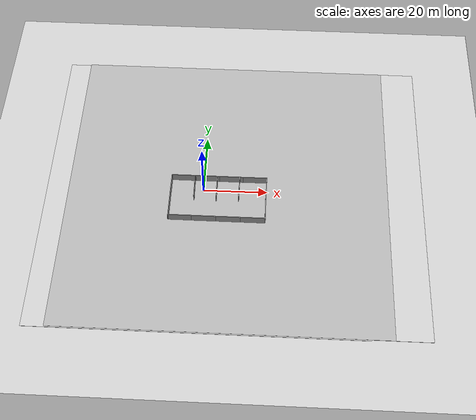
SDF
<sdf version="1.10">
 <world name="empty">
  <physics name="1ms" type="ode">
   <max_step_size>0.002</max_step_size>
   <real_time_factor>1</real_time_factor>
   <real_time_update_rate>500</real_time_update_rate>
  </physics>
  <plugin name="gz::sim::systems::Physics" filename="gz-sim-physics-system"/>
  <plugin name="gz::sim::systems::UserCommands" filename="gz-sim-user-commands-system"/>
  <plugin name="gz::sim::systems::SceneBroadcaster" filename="gz-sim-scene-broadcaster-system"/>
  <plugin name="gz::sim::systems::Contact" filename="gz-sim-contact-system"/>
  <gravity>0 0 -9.8000000000000007</gravity>
  <magnetic_field>5.5644999999999998e-06 2.2875799999999999e-05 -4.2388400000000002e-05</magnetic_field>
  <atmosphere type="adiabatic"/>
  <scene><ambient>0.9 0.9 0.9 1</ambient><background>0.9 0.9 0.9 1</background><shadows>false</shadows></scene>
  <model name="ground_plane">
   <static>true</static>
   <link name="link">
    <collision name="collision">
     <geometry><plane><normal>0 0 1</normal><size>100 100</size></plane></geometry>
     <surface><friction><ode><mu>1</mu><mu2>1</mu2></ode></friction></surface>
    </collision>
    <visual name="visual">
     <geometry><plane><normal>0 0 1</normal><size>100 100</size></plane></geometry>
     <material>
      <ambient>0.800000012 0.800000012 0.800000012 1</ambient>
      <diffuse>0.800000012 0.800000012 0.800000012 1</diffuse>
      <specular>0.800000012 0.800000012 0.800000012 1</specular>
     </material>
    </visual>
    <inertial>
     <mass>1</mass>
     <inertia><ixx>1</ixx><ixy>0</ixy><ixz>0</ixz><iyy>1</iyy><iyz>0</iyz><izz>1</izz></inertia>
    </inertial>
   </link>
  </model>
  <model name="grey_wall">
   <static>true</static>
   <link name="link">
    <pose>0 0 1.3999999999999999 0 0 0</pose>
    <collision name="collision">
     <geometry><box><size>7.5 0.20000000000000001 2.7999999999999998</size></box></geometry>
    </collision>
    <visual name="visual">
     <cast_shadows>false</cast_shadows>
     <geometry><box><size>7.5 0.20000000000000001 2.7999999999999998</size></box></geometry>
     <material>
      <script>
       <uri>https://fuel.gazebosim.org/1.0/openrobotics/models/grey wall/3/files/materials/scripts</uri>
       <uri>https://fuel.gazebosim.org/1.0/openrobotics/models/grey wall/3/files/materials/textures</uri>
       <name>vrc/grey_wall</name>
      </script>
     </material>
    </visual>
    <inertial>
     <mass>1</mass>
     <inertia><ixx>1</ixx><ixy>0</ixy><ixz>0</ixz><iyy>1</iyy><iyz>0</iyz><izz>1</izz></inertia>
    </inertial>
   </link>
   <pose>1.0310618909401805 3.6370633488647082 0 0 0 0</pose>
  </model>
  <model name="grey_wall_0">
   <static>true</static>
   <link name="link">
    <pose>0 0 1.3999999999999999 0 0 0</pose>
    <collision name="collision">
     <geometry><box><size>7.5 0.20000000000000001 2.7999999999999998</size></box></geometry>
    </collision>
    <visual name="visual">
     <cast_shadows>false</cast_shadows>
     <geometry><box><size>7.5 0.20000000000000001 2.7999999999999998</size></box></geometry>
     <material>
      <script>
       <uri>https://fuel.gazebosim.org/1.0/openrobotics/models/grey wall/3/files/materials/scripts</uri>
       <uri>https://fuel.gazebosim.org/1.0/openrobotics/models/grey wall/3/files/materials/textures</uri>
       <name>vrc/grey_wall</name>
      </script>
     </material>
    </visual>
    <inertial>
     <mass>1</mass>
     <inertia><ixx>1</ixx><ixy>0</ixy><ixz>0</ixz><iyy>1</iyy><iyz>0</iyz><izz>1</izz></inertia>
    </inertial>
   </link>
   <pose>-2.8962769508361816 -0.19152174890041351 2.2204460492503131e-16 0 0 1.5843799391314595</pose>
  </model>
  <model name="grey_wall_1">
   <static>true</static>
   <link name="link">
    <pose>0 0 1.3999999999999999 0 0 0</pose>
    <collision name="collision">
     <geometry><box><size>7.5 0.20000000000000001 2.7999999999999998</size></box></geometry>
    </collision>
    <visual name="visual">
     <cast_shadows>false</cast_shadows>
     <geometry><box><size>7.5 0.20000000000000001 2.7999999999999998</size></box></geometry>
     <material>
      <script>
       <uri>https://fuel.gazebosim.org/1.0/openrobotics/models/grey wall/3/files/materials/scripts</uri>
       <uri>https://fuel.gazebosim.org/1.0/openrobotics/models/grey wall/3/files/materials/textures</uri>
       <name>vrc/grey_wall</name>
      </script>
     </material>
    </visual>
    <inertial>
     <mass>1</mass>
     <inertia><ixx>1</ixx><ixy>0</ixy><ixz>0</ixz><iyy>1</iyy><iyz>0</iyz><izz>1</izz></inertia>
    </inertial>
   </link>
   <pose>8.4489297866821289 3.6287746429443359 0 0 0 0</pose>
  </model>
  <model name="grey_wall_2">
   <static>true</static>
   <link name="link">
    <pose>0 0 1.3999999999999999 0 0 0</pose>
    <collision name="collision">
     <geometry><box><size>7.5 0.20000000000000001 2.7999999999999998</size></box></geometry>
    </collision>
    <visual name="visual">
     <cast_shadows>false</cast_shadows>
     <geometry><box><size>7.5 0.20000000000000001 2.7999999999999998</size></box></geometry>
     <material>
      <script>
       <uri>https://fuel.gazebosim.org/1.0/openrobotics/models/grey wall/3/files/materials/scripts</uri>
       <uri>https://fuel.gazebosim.org/1.0/openrobotics/models/grey wall/3/files/materials/textures</uri>
       <name>vrc/grey_wall</name>
      </script>
     </material>
    </visual>
    <inertial>
     <mass>1</mass>
     <inertia><ixx>1</ixx><ixy>0</ixy><ixz>0</ixz><iyy>1</iyy><iyz>0</iyz><izz>1</izz></inertia>
    </inertial>
   </link>
   <pose>4.0670313835144043 -0.15989607572555542 -4.4408920985006262e-16 0 0 -1.5689400107179925</pose>
  </model>
  <model name="grey_wall_3">
   <static>true</static>
   <link name="link">
    <pose>0 0 1.3999999999999999 0 0 0</pose>
    <collision name="collision">
     <geometry><box><size>7.5 0.20000000000000001 2.7999999999999998</size></box></geometry>
    </collision>
    <visual name="visual">
     <cast_shadows>false</cast_shadows>
     <geometry><box><size>7.5 0.20000000000000001 2.7999999999999998</size></box></geometry>
     <material>
      <script>
       <uri>https://fuel.gazebosim.org/1.0/openrobotics/models/grey wall/3/files/materials/scripts</uri>
       <uri>https://fuel.gazebosim.org/1.0/openrobotics/models/grey wall/3/files/materials/textures</uri>
       <name>vrc/grey_wall</name>
      </script>
     </material>
    </visual>
    <inertial>
     <mass>1</mass>
     <inertia><ixx>1</ixx><ixy>0</ixy><ixz>0</ixz><iyy>1</iyy><iyz>0</iyz><izz>1</izz></inertia>
    </inertial>
   </link>
   <pose>-6.3907899856567383 3.646193265914917 0 0 0 0</pose>
  </model>
  <model name="grey_wall_4">
   <static>true</static>
   <link name="link">
    <pose>0 0 1.3999999999999999 0 0 0</pose>
    <collision name="collision">
     <geometry><box><size>7.5 0.20000000000000001 2.7999999999999998</size></box></geometry>
    </collision>
    <visual name="visual">
     <cast_shadows>false</cast_shadows>
     <geometry><box><size>7.5 0.20000000000000001 2.7999999999999998</size></box></geometry>
     <material>
      <script>
       <uri>https://fuel.gazebosim.org/1.0/openrobotics/models/grey wall/3/files/materials/scripts</uri>
       <uri>https://fuel.gazebosim.org/1.0/openrobotics/models/grey wall/3/files/materials/textures</uri>
       <name>vrc/grey_wall</name>
      </script>
     </material>
    </visual>
    <inertial>
     <mass>1</mass>
     <inertia><ixx>1</ixx><ixy>0</ixy><ixz>0</ixz><iyy>1</iyy><iyz>0</iyz><izz>1</izz></inertia>
    </inertial>
   </link>
   <pose>15.932758331298828 3.6409499645233154 0 0 0 0</pose>
  </model>
  <model name="grey_wall_5">
   <static>true</static>
   <link name="link">
    <pose>0 0 1.3999999999999999 0 0 0</pose>
    <collision name="collision">
     <geometry><box><size>7.5 0.20000000000000001 2.7999999999999998</size></box></geometry>
    </collision>
    <visual name="visual">
     <cast_shadows>false</cast_shadows>
     <geometry><box><size>7.5 0.20000000000000001 2.7999999999999998</size></box></geometry>
     <material>
      <script>
       <uri>https://fuel.gazebosim.org/1.0/openrobotics/models/grey wall/3/files/materials/scripts</uri>
       <uri>https://fuel.gazebosim.org/1.0/openrobotics/models/grey wall/3/files/materials/textures</uri>
       <name>vrc/grey_wall</name>
      </script>
     </material>
    </visual>
    <inertial>
     <mass>1</mass>
     <inertia><ixx>1</ixx><ixy>0</ixy><ixz>0</ixz><iyy>1</iyy><iyz>0</iyz><izz>1</izz></inertia>
    </inertial>
   </link>
   <pose>-10.202528953552246 -0.19929812848567963 0.022456400096416473 0 0 -1.5833099763444463</pose>
  </model>
  <model name="grey_wall_6">
   <static>true</static>
   <link name="link">
    <pose>0 0 1.3999999999999999 0 0 0</pose>
    <collision name="collision">
     <geometry><box><size>7.5 0.20000000000000001 2.7999999999999998</size></box></geometry>
    </collision>
    <visual name="visual">
     <cast_shadows>false</cast_shadows>
     <geometry><box><size>7.5 0.20000000000000001 2.7999999999999998</size></box></geometry>
     <material>
      <script>
       <uri>https://fuel.gazebosim.org/1.0/openrobotics/models/grey wall/3/files/materials/scripts</uri>
       <uri>https://fuel.gazebosim.org/1.0/openrobotics/models/grey wall/3/files/materials/textures</uri>
       <name>vrc/grey_wall</name>
      </script>
     </material>
    </visual>
    <inertial>
     <mass>1</mass>
     <inertia><ixx>1</ixx><ixy>0</ixy><ixz>0</ixz><iyy>1</iyy><iyz>0</iyz><izz>1</izz></inertia>
    </inertial>
   </link>
   <pose>11.051899909973145 -0.020624499768018723 4.4408920985006262e-16 0 0 -1.5761108817541023</pose>
  </model>
  <model name="grey_wall_7">
   <static>true</static>
   <link name="link">
    <pose>0 0 1.3999999999999999 0 0 0</pose>
    <collision name="collision">
     <geometry><box><size>7.5 0.20000000000000001 2.7999999999999998</size></box></geometry>
    </collision>
    <visual name="visual">
     <cast_shadows>false</cast_shadows>
     <geometry><box><size>7.5 0.20000000000000001 2.7999999999999998</size></box></geometry>
     <material>
      <script>
       <uri>https://fuel.gazebosim.org/1.0/openrobotics/models/grey wall/3/files/materials/scripts</uri>
       <uri>https://fuel.gazebosim.org/1.0/openrobotics/models/grey wall/3/files/materials/textures</uri>
       <name>vrc/grey_wall</name>
      </script>
     </material>
    </visual>
    <inertial>
     <mass>1</mass>
     <inertia><ixx>1</ixx><ixy>0</ixy><ixz>0</ixz><iyy>1</iyy><iyz>0</iyz><izz>1</izz></inertia>
    </inertial>
   </link>
   <pose>19.496086120605469 -0.20039881765842438 0 0 0 1.5561999852261155</pose>
  </model>
  <model name="grey_wall_8">
   <static>true</static>
   <link name="link">
    <pose>0 0 1.3999999999999999 0 0 0</pose>
    <collision name="collision">
     <geometry><box><size>7.5 0.20000000000000001 2.7999999999999998</size></box></geometry>
    </collision>
    <visual name="visual">
     <cast_shadows>false</cast_shadows>
     <geometry><box><size>7.5 0.20000000000000001 2.7999999999999998</size></box></geometry>
     <material>
      <script>
       <uri>https://fuel.gazebosim.org/1.0/openrobotics/models/grey wall/3/files/materials/scripts</uri>
       <uri>https://fuel.gazebosim.org/1.0/openrobotics/models/grey wall/3/files/materials/textures</uri>
       <name>vrc/grey_wall</name>
      </script>
     </material>
    </visual>
    <inertial>
     <mass>1</mass>
     <inertia><ixx>1</ixx><ixy>0</ixy><ixz>0</ixz><iyy>1</iyy><iyz>0</iyz><izz>1</izz></inertia>
    </inertial>
   </link>
   <pose>19.463710784912109 -7.698211669921875 1.1102230246251565e-15 0 0 1.5742899651688349</pose>
  </model>
  <model name="grey_wall_9">
   <static>true</static>
   <link name="link">
    <pose>0 0 1.3999999999999999 0 0 0</pose>
    <collision name="collision">
     <geometry><box><size>7.5 0.20000000000000001 2.7999999999999998</size></box></geometry>
    </collision>
    <visual name="visual">
     <cast_shadows>false</cast_shadows>
     <geometry><box><size>7.5 0.20000000000000001 2.7999999999999998</size></box></geometry>
     <material>
      <script>
       <uri>https://fuel.gazebosim.org/1.0/openrobotics/models/grey wall/3/files/materials/scripts</uri>
       <uri>https://fuel.gazebosim.org/1.0/openrobotics/models/grey wall/3/files/materials/textures</uri>
       <name>vrc/grey_wall</name>
      </script>
     </material>
    </visual>
    <inertial>
     <mass>1</mass>
     <inertia><ixx>1</ixx><ixy>0</ixy><ixz>0</ixz><iyy>1</iyy><iyz>0</iyz><izz>1</izz></inertia>
    </inertial>
   </link>
   <pose>15.631500244140625 -11.310782432556152 0 0 0 0</pose>
  </model>
  <model name="grey_wall_10">
   <static>true</static>
   <link name="link">
    <pose>0 0 1.3999999999999999 0 0 0</pose>
    <collision name="collision">
     <geometry><box><size>7.5 0.20000000000000001 2.7999999999999998</size></box></geometry>
    </collision>
    <visual name="visual">
     <cast_shadows>false</cast_shadows>
     <geometry><box><size>7.5 0.20000000000000001 2.7999999999999998</size></box></geometry>
     <material>
      <script>
       <uri>https://fuel.gazebosim.org/1.0/openrobotics/models/grey wall/3/files/materials/scripts</uri>
       <uri>https://fuel.gazebosim.org/1.0/openrobotics/models/grey wall/3/files/materials/textures</uri>
       <name>vrc/grey_wall</name>
      </script>
     </material>
    </visual>
    <inertial>
     <mass>1</mass>
     <inertia><ixx>1</ixx><ixy>0</ixy><ixz>0</ixz><iyy>1</iyy><iyz>0</iyz><izz>1</izz></inertia>
    </inertial>
   </link>
   <pose>8.1469898223876953 -11.313203811645508 0 0 0 0</pose>
  </model>
  <model name="grey_wall_11">
   <static>true</static>
   <link name="link">
    <pose>0 0 1.3999999999999999 0 0 0</pose>
    <collision name="collision">
     <geometry><box><size>7.5 0.20000000000000001 2.7999999999999998</size></box></geometry>
    </collision>
    <visual name="visual">
     <cast_shadows>false</cast_shadows>
     <geometry><box><size>7.5 0.20000000000000001 2.7999999999999998</size></box></geometry>
     <material>
      <script>
       <uri>https://fuel.gazebosim.org/1.0/openrobotics/models/grey wall/3/files/materials/scripts</uri>
       <uri>https://fuel.gazebosim.org/1.0/openrobotics/models/grey wall/3/files/materials/textures</uri>
       <name>vrc/grey_wall</name>
      </script>
     </material>
    </visual>
    <inertial>
     <mass>1</mass>
     <inertia><ixx>1</ixx><ixy>0</ixy><ixz>0</ixz><iyy>1</iyy><iyz>0</iyz><izz>1</izz></inertia>
    </inertial>
   </link>
   <pose>0.67542898654937744 -11.31831169128418 0 0 0 0</pose>
  </model>
  <model name="grey_wall_12">
   <static>true</static>
   <link name="link">
    <pose>0 0 1.3999999999999999 0 0 0</pose>
    <collision name="collision">
     <geometry><box><size>7.5 0.20000000000000001 2.7999999999999998</size></box></geometry>
    </collision>
    <visual name="visual">
     <cast_shadows>false</cast_shadows>
     <geometry><box><size>7.5 0.20000000000000001 2.7999999999999998</size></box></geometry>
     <material>
      <script>
       <uri>https://fuel.gazebosim.org/1.0/openrobotics/models/grey wall/3/files/materials/scripts</uri>
       <uri>https://fuel.gazebosim.org/1.0/openrobotics/models/grey wall/3/files/materials/textures</uri>
       <name>vrc/grey_wall</name>
      </script>
     </material>
    </visual>
    <inertial>
     <mass>1</mass>
     <inertia><ixx>1</ixx><ixy>0</ixy><ixz>0</ixz><iyy>1</iyy><iyz>0</iyz><izz>1</izz></inertia>
    </inertial>
   </link>
   <pose>-6.7034101486206055 -11.304203033447266 0 0 0 0</pose>
  </model>
  <model name="grey_wall_13">
   <static>true</static>
   <link name="link">
    <pose>0 0 1.3999999999999999 0 0 0</pose>
    <collision name="collision">
     <geometry><box><size>7.5 0.20000000000000001 2.7999999999999998</size></box></geometry>
    </collision>
    <visual name="visual">
     <cast_shadows>false</cast_shadows>
     <geometry><box><size>7.5 0.20000000000000001 2.7999999999999998</size></box></geometry>
     <material>
      <script>
       <uri>https://fuel.gazebosim.org/1.0/openrobotics/models/grey wall/3/files/materials/scripts</uri>
       <uri>https://fuel.gazebosim.org/1.0/openrobotics/models/grey wall/3/files/materials/textures</uri>
       <name>vrc/grey_wall</name>
      </script>
     </material>
    </visual>
    <inertial>
     <mass>1</mass>
     <inertia><ixx>1</ixx><ixy>0</ixy><ixz>0</ixz><iyy>1</iyy><iyz>0</iyz><izz>1</izz></inertia>
    </inertial>
   </link>
   <pose>-10.231452941894531 -7.6556639671325684 0 0 0 1.5701299851051063</pose>
  </model>
  <model name="ground_plane_1">
   <static>true</static>
   <link name="link">
    <collision name="collision">
     <geometry><plane><normal>0 0 1</normal><size>100 100</size></plane></geometry>
    </collision>
    <visual name="visual">
     <geometry><plane><normal>0 0 1</normal><size>100 100</size></plane></geometry>
     <material>
      <ambient>0.800000012 0.800000012 0.800000012 1</ambient>
      <diffuse>0.800000012 0.800000012 0.800000012 1</diffuse>
      <specular>0.800000012 0.800000012 0.800000012 1</specular>
     </material>
    </visual>
    <inertial>
     <mass>1</mass>
     <inertia><ixx>1</ixx><ixy>0</ixy><ixz>0</ixz><iyy>1</iyy><iyz>0</iyz><izz>1</izz></inertia>
    </inertial>
   </link>
   <pose>0.69860591830726082 0.7495460768917015 0 0 0 0</pose>
  </model>
  <model name="ground_plane_1_1">
   <static>true</static>
   <link name="link">
    <collision name="collision">
     <geometry><plane><normal>0 0 1</normal><size>100 100</size></plane></geometry>
    </collision>
    <visual name="visual">
     <geometry><plane><normal>0 0 1</normal><size>100 100</size></plane></geometry>
     <material>
      <ambient>0.800000012 0.800000012 0.800000012 1</ambient>
      <diffuse>0.800000012 0.800000012 0.800000012 1</diffuse>
      <specular>0.800000012 0.800000012 0.800000012 1</specular>
     </material>
    </visual>
    <inertial>
     <mass>1</mass>
     <inertia><ixx>1</ixx><ixy>0</ixy><ixz>0</ixz><iyy>1</iyy><iyz>0</iyz><izz>1</izz></inertia>
    </inertial>
   </link>
   <pose>18.234590616810486 1.0641320777757386 0 0 0 0</pose>
  </model>
  <model name="ground_plane_0">
   <static>true</static>
   <link name="link">
    <collision name="collision">
     <geometry><plane><normal>0 0 1</normal><size>100 100</size></plane></geometry>
     <surface><friction><ode><mu>100</mu><mu2>50</mu2></ode></friction></surface>
    </collision>
    <visual name="visual">
     <cast_shadows>false</cast_shadows>
     <geometry><plane><normal>0 0 1</normal><size>100 100</size></plane></geometry>
     <material>
      <ambient>0.300000012 0.300000012 0.300000012 1</ambient>
      <diffuse>0.699999988 0.699999988 0.699999988 1</diffuse>
      <specular>0.00999999978 0.00999999978 0.00999999978 1</specular>
     </material>
    </visual>
    <inertial>
     <mass>1</mass>
     <inertia><ixx>1</ixx><ixy>0</ixy><ixz>0</ixz><iyy>1</iyy><iyz>0</iyz><izz>1</izz></inertia>
    </inertial>
   </link>
   <pose>7.4707698822021484 1.0664199590682983 0.055807545781135559 0 0 0</pose>
  </model>
  <light name="sun" type="directional">
   <pose>0 0 10 0 0 0</pose>
   <intensity>1</intensity>
   <direction>-0.5 0.10000000000000001 -0.90000000000000002</direction>
   <diffuse>0.800000012 0.800000012 0.800000012 1</diffuse>
   <specular>0.200000003 0.200000003 0.200000003 1</specular>
   <attenuation>
    <range>1000</range>
    <linear>0.01</linear>
    <constant>0.90000000000000002</constant>
    <quadratic>0.001</quadratic>
   </attenuation>
   <spot><inner_angle>0</inner_angle><outer_angle>0</outer_angle><falloff>0</falloff></spot>
  </light>
 </world>
</sdf>
